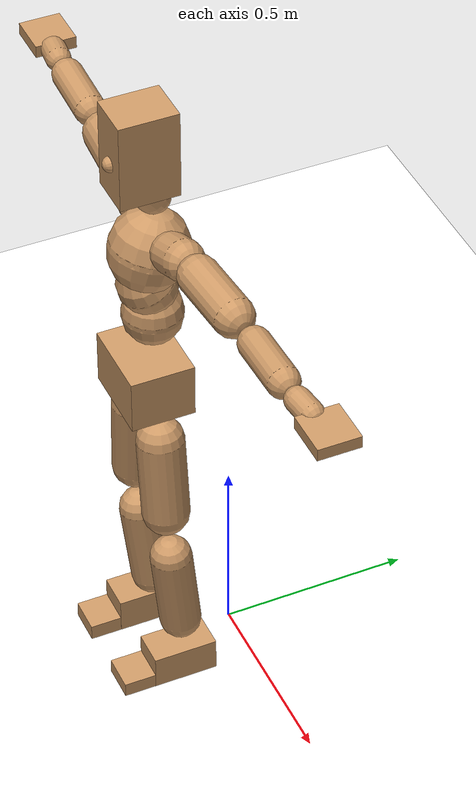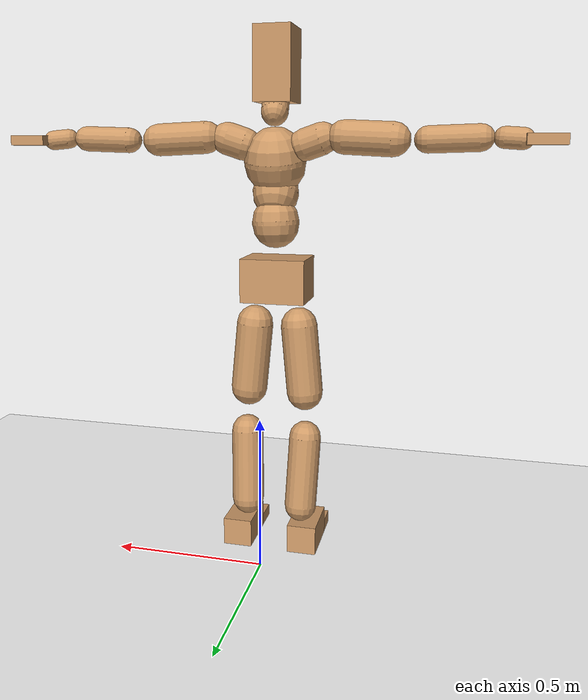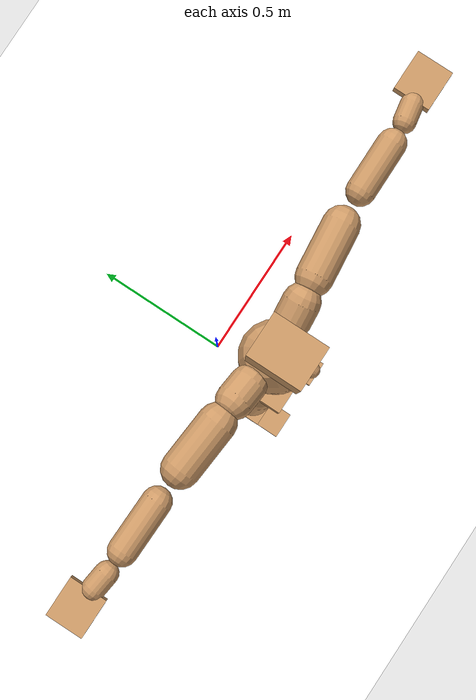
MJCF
<mujoco model="humanoid">
  <option integrator="implicitfast" />

  <visual>
    <global offwidth="1280" offheight="960" />
    <headlight active="1" ambient="0.34 0.34 0.34" diffuse="0.5 0.5 0.5" />
  </visual>

  <default>
    <joint damping="2" stiffness="2" armature="0.01" limited="true" solimplimit="0 .99 .01" />
    <geom condim="1" friction="0.7 0.005 0.0001" solimp=".99 .99 .003" solref="0.015 1" margin="0.001" rgba="0.8 0.6 .4 1" />
    <default class="smplcontact">
      <geom condim="3" friction="1. 0.005 0.0001" solref="0.015 1" solimp="0.98 0.98 0.001" priority="1" />
    </default>
    <default class="stiff_medium">
      <joint stiffness="10" />
    </default>
    <default class="stiff_medium_higher">
      <joint stiffness="50" />
    </default>
    <default class="stiff_high">
      <joint stiffness="100" />
    </default>
  </default>

  <asset>
    <texture type="skybox" builtin="gradient" rgb1="0.99 0.99 0.99" rgb2="0.608 0.828 0.892" width="100" />
    <texture builtin="flat" height="1278" mark="cross" markrgb="1 1 1" name="texgeom" random="0.01" rgb1="0.8 0.6 0.4" rgb2="0.8 0.6 0.4" type="cube" width="127" />
    <texture name="texplane" type="2d" builtin="checker" markrgb="1 1 1" rgb1="0.756 0.772 0.76" rgb2="0.6 0.6 0.6" width="100" height="100" />
    <material name="MatPlane" reflectance="0.5" texture="texplane" texrepeat="1 1" texuniform="true" />
    <material name="geom" texture="texgeom" texuniform="true" />
  </asset>

  <worldbody>
    <light name="tracking_light" pos="0 0 7" dir="0 0 -1" directional="true" cutoff="100" exponent="1" diffuse="1 1 1" specular="0.1 0.1 0.1" mode="trackcom" />
    <camera name="back" pos="0 3 2.4" xyaxes="-1 0 0 0 -1 2" mode="trackcom" />
    <camera name="side" pos="-3 0 2.4" xyaxes="0 -1 0 1 0 2" mode="trackcom" />
    <camera name="front_side" pos="-2.8 -2.8 0.8" xyaxes="0.5 -0.5 0 0.1 0.1 1" mode="trackcom" />
    <geom condim="3" name="floor" pos="0 0 0" rgba="1 1 1 1" size="100 100 .2" type="plane" material="MatPlane" />
    <body name="Pelvis" pos="-0.0018 -0.2233 0.9367" euler="90 0 0">
      <site name="Pelvis" size="0.01" />
      <freejoint name="Pelvis" />
      <geom type="box" pos="-0.0000 -0.0121 -0.0055" size="0.1069 0.0722 0.083" quat="1.0000 0.0000 0.0000 0.0000" density="3165.830099" name="Pelvis" />
      <body name="L_Hip" pos="0.0695 -0.0914 -0.0068">
        <joint name="L_Hip_x" type="hinge" pos="0 0 0" axis="1 0 0" stiffness="10.0" range="-160.0 22.92" class="stiff_medium" damping="14.999999999999998" armature="0.009999999999999998"/>
        <joint name="L_Hip_y" type="hinge" pos="0 0 0" axis="0 1 0" stiffness="10.0" range="-70.0 70.0" class="stiff_medium" damping="10.000000000000002" armature="0.010000000000000005"/>
        <joint name="L_Hip_z" type="hinge" pos="0 0 0" axis="0 0 1" stiffness="10.0" range="-28.65 90.0" class="stiff_medium" damping="9.999999999999998" armature="0.009999999999999997"/>
        <geom type="capsule" density="2040.816327" fromto="0.0069 -0.075 -0.0009 0.0274 -0.3002 -0.0036" size="0.0615" name="L_Hip" />
        <body name="L_Knee" pos="0.0343 -0.3752 -0.0045">
          <joint name="L_Knee_x" type="hinge" pos="0 0 0" axis="1 0 0" range="-5.16 171.89" damping="8.000000000000002" armature="0.010000000000000005" stiffness="2.0"/>
          <joint name="L_Knee_y" type="hinge" pos="0 0 0" axis="0 1 0" range="-4.58 6.88" damping="8.000000000000004" armature="0.010000000000000009" stiffness="2.0"/>
          <joint name="L_Knee_z" type="hinge" pos="0 0 0" axis="0 0 1" range="-6.88 4.58" damping="7.999999999999998" armature="0.009999999999999995" stiffness="2.0"/>
          <geom type="capsule" density="1234.567901" fromto="-0.0027 -0.0796 -0.0087 -0.0109 -0.3184 -0.035" size="0.0541" name="L_Knee" />
          <body name="L_Ankle" pos="-0.0136 -0.398 -0.0437">
            <joint name="L_Ankle_x" type="hinge" pos="0 0 0" axis="1 0 0" range="-45.84 45.84" class="stiff_medium" damping="6.000000000000104" armature="0.010000000000000347" stiffness="10.0"/>
            <joint name="L_Ankle_y" type="hinge" pos="0 0 0" axis="0 1 0" range="-74.48 22.92" class="stiff_medium" damping="3.0" armature="0.01" stiffness="10.0"/>
            <joint name="L_Ankle_z" type="hinge" pos="0 0 0" axis="0 0 1" range="-4.58 4.58" class="stiff_medium" damping="6.000000000000043" armature="0.010000000000000144" stiffness="10.0"/>
            <geom type="box" pos="0.0233 -0.0239 0.0242" size="0.0483 0.0464 0.085" quat="1.0000 0.0000 0.0000 0.0000" density="449.071558" name="L_Ankle" class="smplcontact" />
            <body name="L_Toe" pos="0.0264 -0.0558 0.1193">
              <joint name="L_Toe_x" type="hinge" pos="0 0 0" axis="1 0 0" range="-91.67 22.92" armature="0.01000000000000015" damping="2.0000000000000147" stiffness="2.0"/>
              <joint name="L_Toe_y" type="hinge" pos="0 0 0" axis="0 1 0" range="-4.58 4.58" armature="0.009999999999999976" damping="1.9999999999999976" stiffness="2.0"/>
              <joint name="L_Toe_z" type="hinge" pos="0 0 0" axis="0 0 1" range="-4.58 4.58" armature="0.010000000000000153" damping="2.000000000000015" stiffness="2.0"/>
              <geom type="box" pos="-0.003 0.0055 0.0248" size="0.0478 0.02 0.0496" quat="1.0000 0.0000 0.0000 0.0000" density="423.206892" name="L_Toe" class="smplcontact" />
            </body>
          </body>
        </body>
      </body>
      <body name="R_Hip" pos="-0.0677 -0.0905 -0.0043">
        <joint name="R_Hip_x" type="hinge" pos="0 0 0" axis="1 0 0" stiffness="10.0" range="-160.0 22.92" class="stiff_medium" damping="14.999999999999998" armature="0.009999999999999998"/>
        <joint name="R_Hip_y" type="hinge" pos="0 0 0" axis="0 1 0" stiffness="10.0" range="-70.0 70.0" class="stiff_medium" damping="10.000000000000002" armature="0.010000000000000005"/>
        <joint name="R_Hip_z" type="hinge" pos="0 0 0" axis="0 0 1" stiffness="10.0" range="-90.0 28.65" class="stiff_medium" damping="9.999999999999998" armature="0.009999999999999997"/>
        <geom type="capsule" density="2040.816327" fromto="-0.0077 -0.0765 -0.0018 -0.0306 -0.3061 -0.0071" size="0.0606" name="R_Hip" />
        <body name="R_Knee" pos="-0.0383 -0.3826 -0.0089">
          <joint name="R_Knee_x" type="hinge" pos="0 0 0" axis="1 0 0" range="-5.16 171.89" damping="8.000000000000002" armature="0.010000000000000005" stiffness="2.0"/>
          <joint name="R_Knee_y" type="hinge" pos="0 0 0" axis="0 1 0" range="-6.88 4.58" damping="8.000000000000004" armature="0.010000000000000009" stiffness="2.0"/>
          <joint name="R_Knee_z" type="hinge" pos="0 0 0" axis="0 0 1" range="-4.58 6.88" damping="7.999999999999998" armature="0.009999999999999995" stiffness="2.0"/>
          <geom type="capsule" density="1234.567901" fromto="0.0032 -0.0797 -0.0085 0.0126 -0.3187 -0.0338" size="0.0541" name="R_Knee" />
          <body name="R_Ankle" pos="0.0158 -0.3984 -0.0423">
            <joint name="R_Ankle_x" type="hinge" pos="0 0 0" axis="1 0 0" range="-45.84 45.84" class="stiff_medium" damping="6.000000000000104" armature="0.010000000000000347" stiffness="10.0"/>
            <joint name="R_Ankle_y" type="hinge" pos="0 0 0" axis="0 1 0" range="-22.92 74.48" class="stiff_medium" damping="3.0" armature="0.01" stiffness="10.0"/>
            <joint name="R_Ankle_z" type="hinge" pos="0 0 0" axis="0 0 1" range="-4.58 4.58" class="stiff_medium" damping="6.000000000000043" armature="0.010000000000000144" stiffness="10.0"/>
            <geom type="box" pos="-0.0212 -0.0174 0.0256" size="0.0483 0.0478 0.0865" quat="1.0000 0.0000 0.0000 0.0000" density="434.700981" name="R_Ankle" class="smplcontact" />
            <body name="R_Toe" pos="-0.0254 -0.0481 0.1233">
              <joint name="R_Toe_x" type="hinge" pos="0 0 0" axis="1 0 0" range="-91.67 22.92" armature="0.01000000000000015" damping="2.0000000000000147" stiffness="2.0"/>
              <joint name="R_Toe_y" type="hinge" pos="0 0 0" axis="0 1 0" range="-4.58 4.58" armature="0.009999999999999976" damping="1.9999999999999976" stiffness="2.0"/>
              <joint name="R_Toe_z" type="hinge" pos="0 0 0" axis="0 0 1" range="-4.58 4.58" armature="0.010000000000000153" damping="2.000000000000015" stiffness="2.0"/>
              <geom type="box" pos="0.0042 0.0045 0.0227" size="0.0479 0.0216 0.0493" quat="1.0000 0.0000 0.0000 0.0000" density="407.384095" name="R_Toe" class="smplcontact" />
            </body>
          </body>
        </body>
      </body>
      <body name="Torso" pos="-0.0025 0.109 -0.0267">
        <joint name="Torso_x" type="hinge" pos="0 0 0" axis="1 0 0" range="-25.78 57.3" class="stiff_medium" damping="15.079694808641367" armature="0.01008326412047218" stiffness="10.023085681818182"/>
        <joint name="Torso_y" type="hinge" pos="0 0 0" axis="0 1 0" range="-57.3 57.3" class="stiff_high" damping="20.04530466917274" armature="0.010001821010224931" stiffness="100.43527045454546"/>
        <joint name="Torso_z" type="hinge" pos="0 0 0" axis="0 0 1" range="-34.38 34.38" class="stiff_high" damping="20.073050451984656" armature="0.010055832522181014" stiffness="100.17254999999999"/>
        <geom type="capsule" density="2040.816327" fromto="0.0025 0.0608 0.0005 0.003 0.0743 0.0006" size="0.0769" name="Torso" />
        <body name="Spine" pos="0.0055 0.1352 0.0011">
          <joint name="Spine_x" type="hinge" pos="0 0 0" axis="1 0 0" stiffness="10.041031818181818" range="-25.78 57.3" class="stiff_medium" damping="15.141552066885652" armature="0.010147987583819787"/>
          <joint name="Spine_y" type="hinge" pos="0 0 0" axis="0 1 0" stiffness="10.040606136363637" range="-57.3 57.3" class="stiff_high" damping="8.016922810609866" armature="0.010001738577581527"/>
          <joint name="Spine_z" type="hinge" pos="0 0 0" axis="0 0 1" stiffness="20.09231181818182" range="-34.38 34.38" class="stiff_high" damping="12.06916571493226" armature="0.010069133405951317"/>
          <geom type="capsule" density="2040.816327" fromto="0.0007 0.0238 0.0114 0.0008 0.0291 0.014" size="0.0755" name="Spine" />
          <body name="Chest" pos="0.0015 0.0529 0.0254">
            <joint name="Chest_x" type="hinge" pos="0 0 0" axis="1 0 0" stiffness="10.07799068181818" range="-25.78 57.3" class="stiff_medium" damping="15.198208266285686" armature="0.010186577939902611"/>
            <joint name="Chest_y" type="hinge" pos="0 0 0" axis="0 1 0" stiffness="10.028594318181819" range="-57.3 57.3" class="stiff_high" damping="8.011354240634493" armature="0.009999811964638146"/>
            <joint name="Chest_z" type="hinge" pos="0 0 0" axis="0 0 1" stiffness="20.124851363636363" range="-34.38 34.38" class="stiff_high" damping="12.080518239729345" armature="0.010071773554404893"/>
            <geom type="capsule" density="2040.816327" fromto="-0.0009 0.0682 -0.0173 -0.001 0.0833 -0.0212" size="0.1002" name="Chest" />
            <body name="Neck" pos="-0.0028 0.2139 -0.0429">
              <joint name="Neck_x" type="hinge" pos="0 0 0" axis="1 0 0" range="-28.65 57.3" class="stiff_medium_higher" damping="10.471783512817066" armature="0.010599168208968087" stiffness="51.72964886363637"/>
              <joint name="Neck_y" type="hinge" pos="0 0 0" axis="0 1 0" range="-40.11 40.11" class="stiff_medium_higher" damping="10.296837975173476" armature="0.010241516821657049" stiffness="51.76228977272728"/>
              <joint name="Neck_z" type="hinge" pos="0 0 0" axis="0 0 1" range="-40.11 40.11" class="stiff_medium_higher" damping="10.485097945524785" armature="0.010607382434615032" stiffness="51.821115909090906"/>
              <geom type="capsule" density="1000" fromto="0.001 0.013 0.0103 0.0041 0.052 0.0411" size="0.0436" name="Neck" />
              <body name="Head" pos="0.005395 0.0674375 0.0532238">
                <joint name="Head_x" type="hinge" pos="0 0 0" axis="1 0 0" range="-28.65 57.3" class="stiff_medium_higher" damping="2.079590230674935" armature="0.010420953078358147" stiffness="51.87500000000001"/>
                <joint name="Head_y" type="hinge" pos="0 0 0" axis="0 1 0" range="-40.11 40.11" class="stiff_medium_higher" damping="2.040739342612656" armature="0.010035221842137674" stiffness="51.87500000000001"/>
                <joint name="Head_z" type="hinge" pos="0 0 0" axis="0 0 1" range="-40.11 40.11" class="stiff_medium_higher" damping="2.0814950617575363" armature="0.010440052270171108" stiffness="51.87500000000001"/>
                <geom type="box" pos="-0.0043575 0.090885 -0.012035" size="0.0606 0.1154 0.076" quat="1.0000 0.0000 0.0000 0.0000" density="1018.069894" name="Head" />
                <geom type="capsule" name="nose" size="0.02 0.01" pos="0 0.072625 0.051875" quat="1 0 0 0" mass="0" contype="0" conaffinity="0" />
              </body>
            </body>
            <body name="L_Thorax" pos="0.0788 0.1217 -0.0341">
              <joint name="L_Thorax_x" type="hinge" pos="0 0 0" axis="1 0 0" range="-10.89 4.58" class="stiff_medium_higher" damping="19.999999999999986" armature="0.009999999999999986" stiffness="50.0"/>
              <joint name="L_Thorax_y" type="hinge" pos="0 0 0" axis="0 1 0" range="-28.65 17.19" class="stiff_medium_higher" damping="20.000000000000004" armature="0.010000000000000005" stiffness="50.0"/>
              <joint name="L_Thorax_z" type="hinge" pos="0 0 0" axis="0 0 1" range="-31.51 40.11" class="stiff_medium_higher" damping="20.000000000000004" armature="0.010000000000000005" stiffness="50.0"/>
              <geom type="capsule" density="1000" fromto="0.0182 0.0061 -0.0018 0.0728 0.0244 -0.0071" size="0.0521" name="L_Thorax" />
              <body name="L_Shoulder" pos="0.091 0.0305 -0.0089">
                <joint name="L_Shoulder_x" type="hinge" pos="0 0 0" axis="1 0 0" range="-97.4 97.4" class="stiff_medium" damping="6.0000000000000675" armature="0.01000000000000023" stiffness="10.0"/>
                <joint name="L_Shoulder_y" type="hinge" pos="0 0 0" axis="0 1 0" range="-108.86 80.21" class="stiff_medium" damping="6.000000000000002" armature="0.010000000000000005" stiffness="10.0"/>
                <joint name="L_Shoulder_z" type="hinge" pos="0 0 0" axis="0 0 1" range="-97.4 85.94" class="stiff_medium" damping="6.0000000000000036" armature="0.010000000000000014" stiffness="10.0"/>
                <geom type="capsule" density="1000" fromto="0.0519 -0.0026 -0.0055 0.2077 -0.0102 -0.022" size="0.0517" name="L_Shoulder" />
                <body name="L_Elbow" pos="0.2596 -0.0128 -0.0275">
                  <joint name="L_Elbow_x" type="hinge" pos="0 0 0" axis="1 0 0" range="-17.19 4.58" damping="4.999999999999969" armature="0.009999999999999875" stiffness="2.0"/>
                  <joint name="L_Elbow_y" type="hinge" pos="0 0 0" axis="0 1 0" range="-180.0 17.19" damping="5.000000000000005" armature="0.010000000000000023" stiffness="2.0"/>
                  <joint name="L_Elbow_z" type="hinge" pos="0 0 0" axis="0 0 1" range="-100.84 4.58" damping="5.0" armature="0.010000000000000002" stiffness="2.0"/>
                  <geom type="capsule" density="1000" fromto="0.0498 0.0018 -0.0002 0.1994 0.0072 -0.0009" size="0.0405" name="L_Elbow" />
                  <body name="L_Wrist" pos="0.2492 0.009 -0.0012">
                    <joint name="L_Wrist_x" type="hinge" pos="0 0 0" axis="1 0 0" range="-180.0 22.92" armature="0.010000000000000063" damping="2.000000000000006" stiffness="2.0"/>
                    <joint name="L_Wrist_y" type="hinge" pos="0 0 0" axis="0 1 0" range="-17.19 17.19" armature="0.010000000000000024" damping="2.000000000000002" stiffness="2.0"/>
                    <joint name="L_Wrist_z" type="hinge" pos="0 0 0" axis="0 0 1" range="-22.92 22.92" armature="0.00999999999999988" damping="1.999999999999988" stiffness="2.0"/>
                    <geom type="capsule" density="1000" fromto="0.0168 -0.0016 -0.003 0.0672 -0.0065 -0.012" size="0.0318" name="L_Wrist" class="smplcontact" />
                    <body name="L_Hand" pos="0.084 -0.0082 -0.0149">
                      <joint name="L_Hand_x" type="hinge" pos="0 0 0" axis="1 0 0" range="-17.19 17.19" armature="0.009999999999999953" damping="1.9999999999999953" stiffness="2.0"/>
                      <joint name="L_Hand_y" type="hinge" pos="0 0 0" axis="0 1 0" range="-51.57 51.57" armature="0.010000000000000238" damping="2.0000000000000235" stiffness="2.0"/>
                      <joint name="L_Hand_z" type="hinge" pos="0 0 0" axis="0 0 1" range="-91.67 91.67" armature="0.010000000000000262" damping="2.000000000000026" stiffness="2.0"/>
                      <geom type="box" pos="0.0493 0.001 -0.0058" size="0.0585 0.0158 0.0538" quat="1.0000 0.0000 0.0000 0.0000" density="400.552564" name="L_Hand" class="smplcontact" />
                    </body>
                  </body>
                </body>
              </body>
            </body>
            <body name="R_Thorax" pos="-0.0818 0.1188 -0.0386">
              <joint name="R_Thorax_x" type="hinge" pos="0 0 0" axis="1 0 0" range="-10.89 4.58" class="stiff_medium_higher" damping="19.999999999999986" armature="0.009999999999999986" stiffness="50.0"/>
              <joint name="R_Thorax_y" type="hinge" pos="0 0 0" axis="0 1 0" range="-17.19 28.65" class="stiff_medium_higher" damping="20.000000000000004" armature="0.010000000000000005" stiffness="50.0"/>
              <joint name="R_Thorax_z" type="hinge" pos="0 0 0" axis="0 0 1" range="-40.11 31.51" class="stiff_medium_higher" damping="20.000000000000004" armature="0.010000000000000005" stiffness="50.0"/>
              <geom type="capsule" density="1000" fromto="-0.0192 0.0065 -0.0018 -0.0768 0.026 -0.0073" size="0.0511" name="R_Thorax" />
              <body name="R_Shoulder" pos="-0.096 0.0326 -0.0091">
                <joint name="R_Shoulder_x" type="hinge" pos="0 0 0" axis="1 0 0" range="-97.4 97.4" class="stiff_medium" damping="6.0000000000000675" armature="0.01000000000000023" stiffness="10.0"/>
                <joint name="R_Shoulder_y" type="hinge" pos="0 0 0" axis="0 1 0" range="-80.21 108.86" class="stiff_medium" damping="6.000000000000002" armature="0.010000000000000005" stiffness="10.0"/>
                <joint name="R_Shoulder_z" type="hinge" pos="0 0 0" axis="0 0 1" range="-85.94 97.4" class="stiff_medium" damping="6.0000000000000036" armature="0.010000000000000014" stiffness="10.0"/>
                <geom type="capsule" density="1000" fromto="-0.0507 -0.0027 -0.0043 -0.203 -0.0107 -0.0171" size="0.0531" name="R_Shoulder" />
                <body name="R_Elbow" pos="-0.2537 -0.0133 -0.0214">
                  <joint name="R_Elbow_x" type="hinge" pos="0 0 0" axis="1 0 0" range="-17.19 4.58" damping="4.999999999999969" armature="0.009999999999999875" stiffness="2.0"/>
                  <joint name="R_Elbow_y" type="hinge" pos="0 0 0" axis="0 1 0" range="-17.19 180.0" damping="5.000000000000005" armature="0.010000000000000023" stiffness="2.0"/>
                  <joint name="R_Elbow_z" type="hinge" pos="0 0 0" axis="0 0 1" range="-4.58 100.84" damping="5.0" armature="0.010000000000000002" stiffness="2.0"/>
                  <geom type="capsule" density="1000" fromto="-0.0511 0.0016 -0.0011 -0.2042 0.0062 -0.0044" size="0.0408" name="R_Elbow" />
                  <body name="R_Wrist" pos="-0.2553 0.0078 -0.0056">
                    <joint name="R_Wrist_x" type="hinge" pos="0 0 0" axis="1 0 0" range="-180.0 22.92" armature="0.010000000000000063" damping="2.000000000000006" stiffness="2.0"/>
                    <joint name="R_Wrist_y" type="hinge" pos="0 0 0" axis="0 1 0" range="-17.19 17.19" armature="0.010000000000000024" damping="2.000000000000002" stiffness="2.0"/>
                    <joint name="R_Wrist_z" type="hinge" pos="0 0 0" axis="0 0 1" range="-22.92 22.92" armature="0.00999999999999988" damping="1.999999999999988" stiffness="2.0"/>
                    <geom type="capsule" density="1000" fromto="-0.0169 -0.0012 -0.0021 -0.0677 -0.0049 -0.0083" size="0.0326" name="R_Wrist" class="smplcontact" />
                    <body name="R_Hand" pos="-0.0846 -0.0061 -0.0103">
                      <joint name="R_Hand_x" type="hinge" pos="0 0 0" axis="1 0 0" range="-17.19 17.19" armature="0.009999999999999953" damping="1.9999999999999953" stiffness="2.0"/>
                      <joint name="R_Hand_y" type="hinge" pos="0 0 0" axis="0 1 0" range="-51.57 51.57" armature="0.010000000000000238" damping="2.0000000000000235" stiffness="2.0"/>
                      <joint name="R_Hand_z" type="hinge" pos="0 0 0" axis="0 0 1" range="-91.67 91.67" armature="0.010000000000000262" damping="2.000000000000026" stiffness="2.0"/>
                      <geom type="box" pos="-0.0462 -0.0009 -0.0079" size="0.0569 0.0164 0.0546" quat="1.0000 0.0000 0.0000 0.0000" density="403.679611" name="R_Hand" class="smplcontact" />
                    </body>
                  </body>
                </body>
              </body>
            </body>
          </body>
        </body>
      </body>
    </body>
  </worldbody>
  <actuator>
    <general name="L_Hip_x" joint="L_Hip_x" biastype="affine" gainprm="287.33006409732246" biasprm="-215.3247604770444 -180.0 -1.9999999999999998" ctrllimited="true" ctrlrange="-1 1" forcerange="-360.0 360.0" />
    <general name="L_Hip_y" joint="L_Hip_y" biastype="affine" gainprm="219.9114857512855" biasprm="0.0 -180.0 -2.0000000000000004" ctrllimited="true" ctrlrange="-1 1" forcerange="-360.0 360.0" />
    <general name="L_Hip_z" joint="L_Hip_z" biastype="affine" gainprm="186.3749841742145" biasprm="96.3683546488669 -180.0 -1.9999999999999996" ctrllimited="true" ctrlrange="-1 1" forcerange="-360.0 360.0" />
    <general name="L_Knee_x" joint="L_Knee_x" biastype="affine" gainprm="278.10948965903646" biasprm="261.8988715665131 -180.0 -2.0000000000000004" ctrllimited="true" ctrlrange="-1 1" forcerange="-360.0 360.0" />
    <general name="L_Knee_y" joint="L_Knee_y" biastype="affine" gainprm="18.001325905069514" biasprm="3.612831551628262 -180.0 -2.000000000000001" ctrllimited="true" ctrlrange="-1 1" forcerange="-360.0 360.0" />
    <general name="L_Knee_z" joint="L_Knee_z" biastype="affine" gainprm="18.001325905069514" biasprm="-3.612831551628262 -180.0 -1.9999999999999996" ctrllimited="true" ctrlrange="-1 1" forcerange="-360.0 360.0" />
    <general name="L_Ankle_x" joint="L_Ankle_x" biastype="affine" gainprm="72.00530362027807" biasprm="0.0 -90.0 -2.0000000000000346" ctrllimited="true" ctrlrange="-1 1" forcerange="-180.0 180.0" />
    <general name="L_Ankle_y" joint="L_Ankle_y" biastype="affine" gainprm="76.49778111491148" biasprm="-40.49512930477244 -90.0 -2.0" ctrllimited="true" ctrlrange="-1 1" forcerange="-180.0 180.0" />
    <general name="L_Ankle_z" joint="L_Ankle_z" biastype="affine" gainprm="7.1942471767206255" biasprm="0.0 -90.0 -2.000000000000014" ctrllimited="true" ctrlrange="-1 1" forcerange="-180.0 180.0" />
    <general name="L_Toe_x" joint="L_Toe_x" biastype="affine" gainprm="71.99902043497087" biasprm="-43.19689898685965 -72.0 -0.8000000000000059" ctrllimited="true" ctrlrange="-1 1" forcerange="-144.0 144.0" />
    <general name="L_Toe_y" joint="L_Toe_y" biastype="affine" gainprm="5.755397741376501" biasprm="0.0 -72.0 -0.799999999999999" ctrllimited="true" ctrlrange="-1 1" forcerange="-144.0 144.0" />
    <general name="L_Toe_z" joint="L_Toe_z" biastype="affine" gainprm="5.755397741376501" biasprm="0.0 -72.0 -0.800000000000006" ctrllimited="true" ctrlrange="-1 1" forcerange="-144.0 144.0" />
    <general name="R_Hip_x" joint="R_Hip_x" biastype="affine" gainprm="287.33006409732246" biasprm="-215.3247604770444 -180.0 -1.9999999999999998" ctrllimited="true" ctrlrange="-1 1" forcerange="-360.0 360.0" />
    <general name="R_Hip_y" joint="R_Hip_y" biastype="affine" gainprm="219.9114857512855" biasprm="0.0 -180.0 -2.0000000000000004" ctrllimited="true" ctrlrange="-1 1" forcerange="-360.0 360.0" />
    <general name="R_Hip_z" joint="R_Hip_z" biastype="affine" gainprm="186.3749841742145" biasprm="-96.3683546488669 -180.0 -1.9999999999999996" ctrllimited="true" ctrlrange="-1 1" forcerange="-360.0 360.0" />
    <general name="R_Knee_x" joint="R_Knee_x" biastype="affine" gainprm="278.10948965903646" biasprm="261.8988715665131 -180.0 -2.0000000000000004" ctrllimited="true" ctrlrange="-1 1" forcerange="-360.0 360.0" />
    <general name="R_Knee_y" joint="R_Knee_y" biastype="affine" gainprm="18.001325905069514" biasprm="-3.612831551628262 -180.0 -2.000000000000001" ctrllimited="true" ctrlrange="-1 1" forcerange="-360.0 360.0" />
    <general name="R_Knee_z" joint="R_Knee_z" biastype="affine" gainprm="18.001325905069514" biasprm="3.612831551628262 -180.0 -1.9999999999999996" ctrllimited="true" ctrlrange="-1 1" forcerange="-360.0 360.0" />
    <general name="R_Ankle_x" joint="R_Ankle_x" biastype="affine" gainprm="72.00530362027807" biasprm="0.0 -90.0 -2.0000000000000346" ctrllimited="true" ctrlrange="-1 1" forcerange="-180.0 180.0" />
    <general name="R_Ankle_y" joint="R_Ankle_y" biastype="affine" gainprm="76.49778111491148" biasprm="40.49512930477244 -90.0 -2.0" ctrllimited="true" ctrlrange="-1 1" forcerange="-180.0 180.0" />
    <general name="R_Ankle_z" joint="R_Ankle_z" biastype="affine" gainprm="7.1942471767206255" biasprm="0.0 -90.0 -2.000000000000014" ctrllimited="true" ctrlrange="-1 1" forcerange="-180.0 180.0" />
    <general name="R_Toe_x" joint="R_Toe_x" biastype="affine" gainprm="71.99902043497087" biasprm="-43.19689898685965 -72.0 -0.8000000000000059" ctrllimited="true" ctrlrange="-1 1" forcerange="-144.0 144.0" />
    <general name="R_Toe_y" joint="R_Toe_y" biastype="affine" gainprm="5.755397741376501" biasprm="0.0 -72.0 -0.799999999999999" ctrllimited="true" ctrlrange="-1 1" forcerange="-144.0 144.0" />
    <general name="R_Toe_z" joint="R_Toe_z" biastype="affine" gainprm="5.755397741376501" biasprm="0.0 -72.0 -0.800000000000006" ctrllimited="true" ctrlrange="-1 1" forcerange="-144.0 144.0" />
    <general name="Torso_x" joint="Torso_x" biastype="affine" gainprm="174.40404138430205" biasprm="66.16773452615791 -240.5540563636364 -4.021251948971031" ctrllimited="true" ctrlrange="-1 1" forcerange="-360.8310845454546 360.8310845454546" />
    <general name="Torso_y" joint="Torso_y" biastype="affine" gainprm="241.06240477547624" biasprm="0.0 -241.0446490909091 -4.009060933834548" ctrllimited="true" ctrlrange="-1 1" forcerange="-361.5669736363636 361.5669736363636" />
    <general name="Torso_z" joint="Torso_z" biastype="affine" gainprm="144.2590975433497" biasprm="0.0 -240.41411999999997 -4.014610090396931" ctrllimited="true" ctrlrange="-1 1" forcerange="-360.6211799999999 360.6211799999999" />
    <general name="Spine_x" joint="Spine_x" biastype="affine" gainprm="174.71630836559" biasprm="66.2862065440948 -240.98476363636362 -4.0377472178361735" ctrllimited="true" ctrlrange="-1 1" forcerange="-361.47714545454545 361.47714545454545" />
    <general name="Spine_y" joint="Spine_y" biastype="affine" gainprm="240.99229779349687" biasprm="0.0 -240.97454727272728 -4.008461405304933" ctrllimited="true" ctrlrange="-1 1" forcerange="-361.46182090909093 361.46182090909093" />
    <general name="Spine_z" joint="Spine_z" biastype="affine" gainprm="144.67530129014833" biasprm="0.0 -241.10774181818184 -4.023055238310754" ctrllimited="true" ctrlrange="-1 1" forcerange="-361.66161272727277 361.66161272727277" />
    <general name="Chest_x" joint="Chest_x" biastype="affine" gainprm="175.35940126011107" biasprm="66.53019171543933 -241.87177636363634 -4.052855537676183" ctrllimited="true" ctrlrange="-1 1" forcerange="-362.8076645454545 362.8076645454545" />
    <general name="Chest_y" joint="Chest_y" biastype="affine" gainprm="240.70399292175907" biasprm="0.0 -240.68626363636363 -4.005677120317246" ctrllimited="true" ctrlrange="-1 1" forcerange="-361.02939545454547 361.02939545454547" />
    <general name="Chest_z" joint="Chest_z" biastype="affine" gainprm="144.90960327516035" biasprm="0.0 -241.49821636363635 -4.026839413243115" ctrllimited="true" ctrlrange="-1 1" forcerange="-362.24732454545455 362.24732454545455" />
    <general name="Neck_x" joint="Neck_x" biastype="affine" gainprm="27.936068044473814" biasprm="9.312022681491271 -37.24534718181818 -0.8377426810253653" ctrllimited="true" ctrlrange="-1 1" forcerange="-74.49069436363636 74.49069436363636" />
    <general name="Neck_y" joint="Neck_y" biastype="affine" gainprm="26.09011573816229" biasprm="0.0 -37.26884863636364 -0.8237470380138782" ctrllimited="true" ctrlrange="-1 1" forcerange="-74.53769727272729 74.53769727272729" />
    <general name="Neck_z" joint="Neck_z" biastype="affine" gainprm="26.119766294829986" biasprm="0.0 -37.311203454545456 -0.8388078356419829" ctrllimited="true" ctrlrange="-1 1" forcerange="-74.62240690909091 74.62240690909091" />
    <general name="Head_x" joint="Head_x" biastype="affine" gainprm="18.67637562650962" biasprm="6.225458542169874 -24.900000000000002 -0.8318360922699741" ctrllimited="true" ctrlrange="-1 1" forcerange="-49.800000000000004 49.800000000000004" />
    <general name="Head_y" joint="Head_y" biastype="affine" gainprm="17.431283918075646" biasprm="0.0 -24.900000000000002 -0.8162957370450624" ctrllimited="true" ctrlrange="-1 1" forcerange="-49.800000000000004 49.800000000000004" />
    <general name="Head_z" joint="Head_z" biastype="affine" gainprm="17.431283918075646" biasprm="0.0 -24.900000000000002 -0.8325980247030146" ctrllimited="true" ctrlrange="-1 1" forcerange="-49.800000000000004 49.800000000000004" />
    <general name="L_Thorax_x" joint="L_Thorax_x" biastype="affine" gainprm="16.200146117011364" biasprm="-6.6078165480505335 -120.0 -1.599999999999999" ctrllimited="true" ctrlrange="-1 1" forcerange="-240.0 240.0" />
    <general name="L_Thorax_y" joint="L_Thorax_y" biastype="affine" gainprm="48.00353574685204" biasprm="-12.00088393671301 -120.0 -1.6000000000000005" ctrllimited="true" ctrlrange="-1 1" forcerange="-240.0 240.0" />
    <general name="L_Thorax_z" joint="L_Thorax_z" biastype="affine" gainprm="75.00028861670033" biasprm="9.00589894029074 -120.0 -1.6000000000000005" ctrllimited="true" ctrlrange="-1 1" forcerange="-240.0 240.0" />
    <general name="L_Shoulder_x" joint="L_Shoulder_x" biastype="affine" gainprm="81.5976331892389" biasprm="0.0 -48.0 -1.6000000000000183" ctrllimited="true" ctrlrange="-1 1" forcerange="-96.0 96.0" />
    <general name="L_Shoulder_y" joint="L_Shoulder_y" biastype="affine" gainprm="79.19745640189629" biasprm="-12.00088393671301 -48.0 -1.6000000000000005" ctrllimited="true" ctrlrange="-1 1" forcerange="-96.0 96.0" />
    <general name="L_Shoulder_z" joint="L_Shoulder_z" biastype="affine" gainprm="76.79727961455369" biasprm="-4.800353574685214 -48.0 -1.6000000000000012" ctrllimited="true" ctrlrange="-1 1" forcerange="-96.0 96.0" />
    <general name="L_Elbow_x" joint="L_Elbow_x" biastype="affine" gainprm="13.67849441372996" biasprm="-7.923096672353461 -72.0 -0.799999999999995" ctrllimited="true" ctrlrange="-1 1" forcerange="-144.0 144.0" />
    <general name="L_Elbow_y" joint="L_Elbow_y" biastype="affine" gainprm="123.89813107227425" biasprm="-102.29653998619085 -72.0 -0.8000000000000009" ctrllimited="true" ctrlrange="-1 1" forcerange="-144.0 144.0" />
    <general name="L_Elbow_z" joint="L_Elbow_z" biastype="affine" gainprm="66.23733950828719" biasprm="-60.4819417669107 -72.0 -0.8" ctrllimited="true" ctrlrange="-1 1" forcerange="-144.0 144.0" />
    <general name="L_Wrist_x" joint="L_Wrist_x" biastype="affine" gainprm="21.24973270888136" biasprm="-16.449379134196157 -12.0 -0.8000000000000025" ctrllimited="true" ctrlrange="-1 1" forcerange="-24.0 24.0" />
    <general name="L_Wrist_y" joint="L_Wrist_y" biastype="affine" gainprm="3.6002651810139037" biasprm="0.0 -12.0 -0.8000000000000009" ctrllimited="true" ctrlrange="-1 1" forcerange="-24.0 24.0" />
    <general name="L_Wrist_z" joint="L_Wrist_z" biastype="affine" gainprm="4.800353574685205" biasprm="0.0 -12.0 -0.7999999999999953" ctrllimited="true" ctrlrange="-1 1" forcerange="-24.0 24.0" />
    <general name="L_Hand_x" joint="L_Hand_x" biastype="affine" gainprm="3.6002651810139037" biasprm="0.0 -12.0 -0.7999999999999982" ctrllimited="true" ctrlrange="-1 1" forcerange="-24.0 24.0" />
    <general name="L_Hand_y" joint="L_Hand_y" biastype="affine" gainprm="10.800795543041708" biasprm="0.0 -12.0 -0.8000000000000095" ctrllimited="true" ctrlrange="-1 1" forcerange="-24.0 24.0" />
    <general name="L_Hand_z" joint="L_Hand_z" biastype="affine" gainprm="19.199319903638422" biasprm="0.0 -12.0 -0.8000000000000105" ctrllimited="true" ctrlrange="-1 1" forcerange="-24.0 24.0" />
    <general name="R_Thorax_x" joint="R_Thorax_x" biastype="affine" gainprm="16.200146117011364" biasprm="-6.6078165480505335 -120.0 -1.599999999999999" ctrllimited="true" ctrlrange="-1 1" forcerange="-240.0 240.0" />
    <general name="R_Thorax_y" joint="R_Thorax_y" biastype="affine" gainprm="48.00353574685204" biasprm="12.000883936713002 -120.0 -1.6000000000000005" ctrllimited="true" ctrlrange="-1 1" forcerange="-240.0 240.0" />
    <general name="R_Thorax_z" joint="R_Thorax_z" biastype="affine" gainprm="75.00028861670033" biasprm="-9.00589894029074 -120.0 -1.6000000000000005" ctrllimited="true" ctrlrange="-1 1" forcerange="-240.0 240.0" />
    <general name="R_Shoulder_x" joint="R_Shoulder_x" biastype="affine" gainprm="81.5976331892389" biasprm="0.0 -48.0 -1.6000000000000183" ctrllimited="true" ctrlrange="-1 1" forcerange="-96.0 96.0" />
    <general name="R_Shoulder_y" joint="R_Shoulder_y" biastype="affine" gainprm="79.19745640189629" biasprm="12.00088393671301 -48.0 -1.6000000000000005" ctrllimited="true" ctrlrange="-1 1" forcerange="-96.0 96.0" />
    <general name="R_Shoulder_z" joint="R_Shoulder_z" biastype="affine" gainprm="76.79727961455369" biasprm="4.800353574685204 -48.0 -1.6000000000000012" ctrllimited="true" ctrlrange="-1 1" forcerange="-96.0 96.0" />
    <general name="R_Elbow_x" joint="R_Elbow_x" biastype="affine" gainprm="13.67849441372996" biasprm="-7.923096672353461 -72.0 -0.799999999999995" ctrllimited="true" ctrlrange="-1 1" forcerange="-144.0 144.0" />
    <general name="R_Elbow_y" joint="R_Elbow_y" biastype="affine" gainprm="123.89813107227425" biasprm="102.29653998619085 -72.0 -0.8000000000000009" ctrllimited="true" ctrlrange="-1 1" forcerange="-144.0 144.0" />
    <general name="R_Elbow_z" joint="R_Elbow_z" biastype="affine" gainprm="66.23733950828719" biasprm="60.481941766910694 -72.0 -0.8" ctrllimited="true" ctrlrange="-1 1" forcerange="-144.0 144.0" />
    <general name="R_Wrist_x" joint="R_Wrist_x" biastype="affine" gainprm="21.24973270888136" biasprm="-16.449379134196157 -12.0 -0.8000000000000025" ctrllimited="true" ctrlrange="-1 1" forcerange="-24.0 24.0" />
    <general name="R_Wrist_y" joint="R_Wrist_y" biastype="affine" gainprm="3.6002651810139037" biasprm="0.0 -12.0 -0.8000000000000009" ctrllimited="true" ctrlrange="-1 1" forcerange="-24.0 24.0" />
    <general name="R_Wrist_z" joint="R_Wrist_z" biastype="affine" gainprm="4.800353574685205" biasprm="0.0 -12.0 -0.7999999999999953" ctrllimited="true" ctrlrange="-1 1" forcerange="-24.0 24.0" />
    <general name="R_Hand_x" joint="R_Hand_x" biastype="affine" gainprm="3.6002651810139037" biasprm="0.0 -12.0 -0.7999999999999982" ctrllimited="true" ctrlrange="-1 1" forcerange="-24.0 24.0" />
    <general name="R_Hand_y" joint="R_Hand_y" biastype="affine" gainprm="10.800795543041708" biasprm="0.0 -12.0 -0.8000000000000095" ctrllimited="true" ctrlrange="-1 1" forcerange="-24.0 24.0" />
    <general name="R_Hand_z" joint="R_Hand_z" biastype="affine" gainprm="19.199319903638422" biasprm="0.0 -12.0 -0.8000000000000105" ctrllimited="true" ctrlrange="-1 1" forcerange="-24.0 24.0" />
  </actuator>
  <contact>
    <exclude body1="Torso" body2="Chest" />
    <exclude body1="Head" body2="Chest" />
    <exclude body1="R_Knee" body2="R_Toe" />
    <exclude body1="R_Knee" body2="L_Ankle" />
    <exclude body1="R_Knee" body2="L_Toe" />
    <exclude body1="L_Knee" body2="L_Toe" />
    <exclude body1="L_Knee" body2="R_Ankle" />
    <exclude body1="L_Knee" body2="R_Toe" />
    <exclude body1="L_Shoulder" body2="Chest" />
    <exclude body1="R_Shoulder" body2="Chest" />
  </contact>
  <sensor>
    <framelinvel name="sensor_Pelvis_framelinvel" objtype="xbody" objname="Pelvis" />
    <framelinvel name="sensor_L_Hip_framelinvel" objtype="xbody" objname="L_Hip" />
    <framelinvel name="sensor_L_Knee_framelinvel" objtype="xbody" objname="L_Knee" />
    <framelinvel name="sensor_L_Ankle_framelinvel" objtype="xbody" objname="L_Ankle" />
    <framelinvel name="sensor_L_Toe_framelinvel" objtype="xbody" objname="L_Toe" />
    <framelinvel name="sensor_R_Hip_framelinvel" objtype="xbody" objname="R_Hip" />
    <framelinvel name="sensor_R_Knee_framelinvel" objtype="xbody" objname="R_Knee" />
    <framelinvel name="sensor_R_Ankle_framelinvel" objtype="xbody" objname="R_Ankle" />
    <framelinvel name="sensor_R_Toe_framelinvel" objtype="xbody" objname="R_Toe" />
    <framelinvel name="sensor_Torso_framelinvel" objtype="xbody" objname="Torso" />
    <framelinvel name="sensor_Spine_framelinvel" objtype="xbody" objname="Spine" />
    <framelinvel name="sensor_Chest_framelinvel" objtype="xbody" objname="Chest" />
    <framelinvel name="sensor_Neck_framelinvel" objtype="xbody" objname="Neck" />
    <framelinvel name="sensor_Head_framelinvel" objtype="xbody" objname="Head" />
    <framelinvel name="sensor_L_Thorax_framelinvel" objtype="xbody" objname="L_Thorax" />
    <framelinvel name="sensor_L_Shoulder_framelinvel" objtype="xbody" objname="L_Shoulder" />
    <framelinvel name="sensor_L_Elbow_framelinvel" objtype="xbody" objname="L_Elbow" />
    <framelinvel name="sensor_L_Wrist_framelinvel" objtype="xbody" objname="L_Wrist" />
    <framelinvel name="sensor_L_Hand_framelinvel" objtype="xbody" objname="L_Hand" />
    <framelinvel name="sensor_R_Thorax_framelinvel" objtype="xbody" objname="R_Thorax" />
    <framelinvel name="sensor_R_Shoulder_framelinvel" objtype="xbody" objname="R_Shoulder" />
    <framelinvel name="sensor_R_Elbow_framelinvel" objtype="xbody" objname="R_Elbow" />
    <framelinvel name="sensor_R_Wrist_framelinvel" objtype="xbody" objname="R_Wrist" />
    <framelinvel name="sensor_R_Hand_framelinvel" objtype="xbody" objname="R_Hand" />
    <frameangvel name="sensor_Pelvis_frameangvel" objtype="xbody" objname="Pelvis" />
    <frameangvel name="sensor_L_Hip_frameangvel" objtype="xbody" objname="L_Hip" />
    <frameangvel name="sensor_L_Knee_frameangvel" objtype="xbody" objname="L_Knee" />
    <frameangvel name="sensor_L_Ankle_frameangvel" objtype="xbody" objname="L_Ankle" />
    <frameangvel name="sensor_L_Toe_frameangvel" objtype="xbody" objname="L_Toe" />
    <frameangvel name="sensor_R_Hip_frameangvel" objtype="xbody" objname="R_Hip" />
    <frameangvel name="sensor_R_Knee_frameangvel" objtype="xbody" objname="R_Knee" />
    <frameangvel name="sensor_R_Ankle_frameangvel" objtype="xbody" objname="R_Ankle" />
    <frameangvel name="sensor_R_Toe_frameangvel" objtype="xbody" objname="R_Toe" />
    <frameangvel name="sensor_Torso_frameangvel" objtype="xbody" objname="Torso" />
    <frameangvel name="sensor_Spine_frameangvel" objtype="xbody" objname="Spine" />
    <frameangvel name="sensor_Chest_frameangvel" objtype="xbody" objname="Chest" />
    <frameangvel name="sensor_Neck_frameangvel" objtype="xbody" objname="Neck" />
    <frameangvel name="sensor_Head_frameangvel" objtype="xbody" objname="Head" />
    <frameangvel name="sensor_L_Thorax_frameangvel" objtype="xbody" objname="L_Thorax" />
    <frameangvel name="sensor_L_Shoulder_frameangvel" objtype="xbody" objname="L_Shoulder" />
    <frameangvel name="sensor_L_Elbow_frameangvel" objtype="xbody" objname="L_Elbow" />
    <frameangvel name="sensor_L_Wrist_frameangvel" objtype="xbody" objname="L_Wrist" />
    <frameangvel name="sensor_L_Hand_frameangvel" objtype="xbody" objname="L_Hand" />
    <frameangvel name="sensor_R_Thorax_frameangvel" objtype="xbody" objname="R_Thorax" />
    <frameangvel name="sensor_R_Shoulder_frameangvel" objtype="xbody" objname="R_Shoulder" />
    <frameangvel name="sensor_R_Elbow_frameangvel" objtype="xbody" objname="R_Elbow" />
    <frameangvel name="sensor_R_Wrist_frameangvel" objtype="xbody" objname="R_Wrist" />
    <frameangvel name="sensor_R_Hand_frameangvel" objtype="xbody" objname="R_Hand" />
    <subtreelinvel name="Chest_subtreelinvel" body="Chest" />
    <gyro name="Pelvis_gyro" site="Pelvis" />
  </sensor>
</mujoco>
